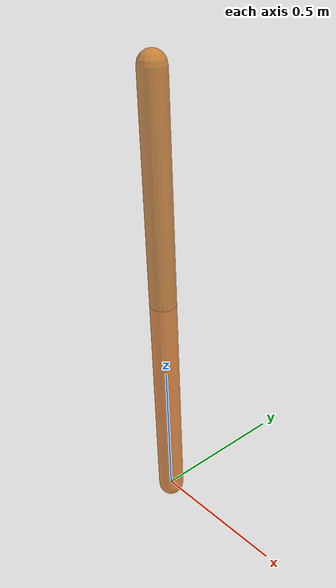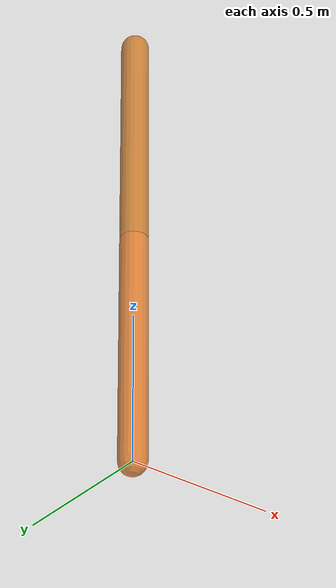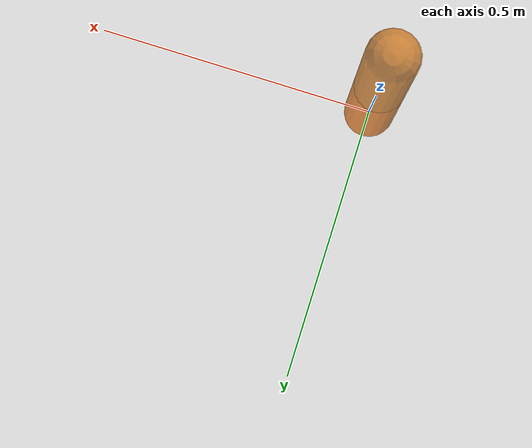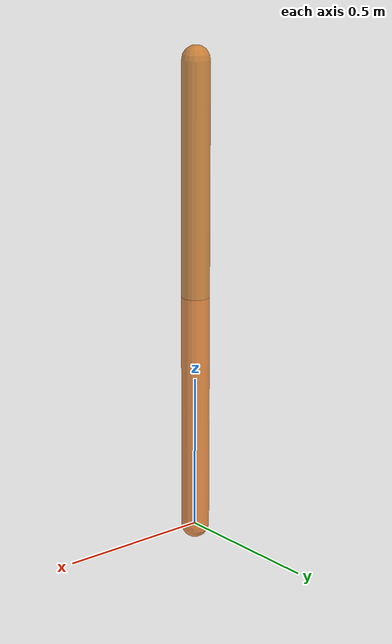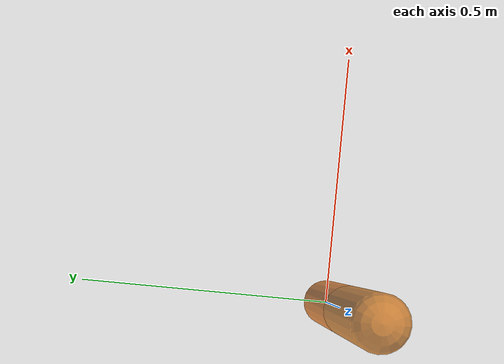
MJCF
<mujoco model="HPC_custom">
  <compiler angle="radian" coordinate="local" inertiafromgeom="false" />
  <default>
    <joint damping="0.0" />
    <geom contype="0" friction="0.0 0.0 0.0" />
  </default>
  <option gravity="0 0 -9.81" integrator="RK4" timestep="0.0016666666666667" />
  <size nstack="3000" nuser_actuator="10" nuserdata="100" />
  <worldbody>
    <geom name="floor" pos="0 0 -3" rgba="1 1 1 1" size="40 40 40" type="plane" />
    <body name="leg" pos="0 0 0">
      <joint axis="0 1 0" limited="true" name="hinge" pos="0 0 0" range="-1 1" type="hinge" />
      <geom fromto="0 0 0 0 0 0.7790" name="cpole" rgba="0.9 0.4 0.0 0.7" size="0.045" type="capsule" />
      <inertial diaginertia="0.872503 0.872503 0.001" mass="17.8391" pos="0 0 0.4980" />
      <body name="body" pos="0 0 0.779">
        <joint axis="0 1 0" limited="true" name="hinge2" pos="0 0 0" range="-1 1" type="hinge" />
        <geom fromto="0 0 0 0 0 0.7610" name="cpole2" rgba="0.8 0.4 0.0 0.7" size="0.045" type="capsule" />
        <inertial diaginertia="1.074783 1.074783 0.001" mass="35.3379" pos="0 0 0.2802" />
      </body>
    </body>
  </worldbody>
  <actuator>
    <motor ctrllimited="true" ctrlrange="-1 1" gear="300" joint="hinge" />
    <motor ctrllimited="true" ctrlrange="-1 1" gear="300" joint="hinge2" />
  </actuator>
</mujoco>
